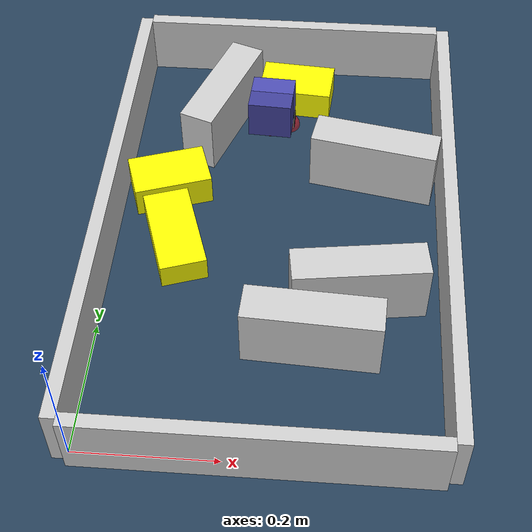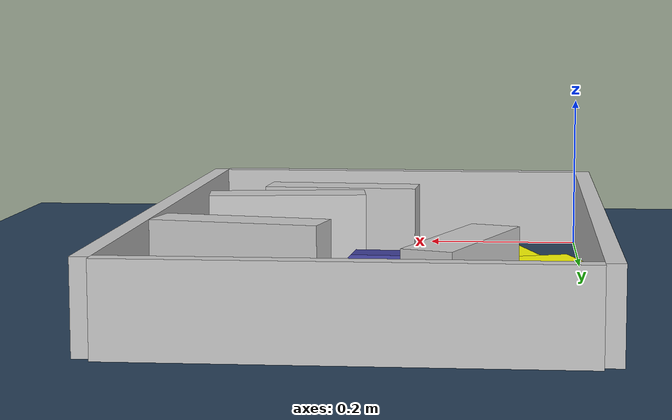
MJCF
<?xml version='1.0' encoding='utf-8'?>
<mujoco model="real_buildable">
  <compiler angle="degree" />
  <option timestep="0.002" integrator="implicitfast" iterations="100" cone="elliptic" />
  <default>
    <geom density="1" />
  </default>
  <asset>
    <texture builtin="gradient" height="3072" rgb1="0.3 0.5 0.7" rgb2="0 0 0" type="skybox" width="512" />
    <texture builtin="checker" height="300" mark="edge" markrgb="0.8 0.8 0.8" name="groundplane" rgb1="0.2 0.3 0.4" rgb2="0.1 0.2 0.3" type="2d" width="300" />
    <material name="groundplane" reflectance="0.2" texrepeat="5 5" texture="groundplane" texuniform="true" />
  </asset>
  <worldbody>
    <light dir="0 0 -1" directional="true" pos="0 0 1.5" />
    <geom name="floor" type="plane" condim="4" friction="0.5 0.005 0.001" material="groundplane" size="0 0 0.05" />
    <body name="walls">
      <geom name="wall_boundary_left" type="box" condim="4" friction="1.0 0.005 0.0001" rgba="0.8 0.8 0.8 1" pos="-0.010000 0.387500 0.050000" euler="0 0 0.000000" size="0.010000 0.397500 0.050000" />
      <geom name="wall_boundary_right" type="box" condim="4" friction="1.0 0.005 0.0001" rgba="0.8 0.8 0.8 1" pos="0.500000 0.387500 0.050000" euler="0 0 0.000000" size="0.010000 0.397500 0.050000" />
      <geom name="wall_boundary_bottom" type="box" condim="4" friction="1.0 0.005 0.0001" rgba="0.8 0.8 0.8 1" pos="0.245000 -0.010000 0.050000" euler="0 0 0.000000" size="0.245000 0.010000 0.050000" />
      <geom name="wall_boundary_top" type="box" condim="4" friction="1.0 0.005 0.0001" rgba="0.8 0.8 0.8 1" pos="0.245000 0.785000 0.050000" euler="0 0 0.000000" size="0.245000 0.010000 0.050000" />
      <geom name="wall_inner_1" type="box" condim="4" friction="1.0 0.005 0.0001" rgba="0.8 0.8 0.8 1" pos="0.307452 0.181307 0.050000" euler="0 0 -3.001577" size="0.097500 0.027500 0.050000" />
      <geom name="wall_inner_2" type="box" condim="4" friction="1.0 0.005 0.0001" rgba="0.8 0.8 0.8 1" pos="0.369012 0.266334 0.050000" euler="0 0 7.505534" size="0.097500 0.027500 0.050000" />
      <geom name="wall_inner_3" type="box" condim="4" friction="1.0 0.005 0.0001" rgba="0.8 0.8 0.8 1" pos="0.389000 0.514000 0.050000" euler="0 0 169.500000" size="0.097500 0.027500 0.050000" />
      <geom name="wall_inner_4" type="box" condim="4" friction="1.0 0.005 0.0001" rgba="0.8 0.8 0.8 1" pos="0.138000 0.629000 0.050000" euler="0 0 70.200000" size="0.097500 0.027500 0.050000" />
    </body>
    <body name="car" pos="0.21899298946609078 0.62903842118031572 0.01" quat="0.72657695712508841 0 0 0.68708509325617562">
      <freejoint name="car_freejoint" />
      <inertial pos="0 0 0.0375" mass="0.35" diaginertia="0.000266 0.000266 0.000286" />
      <geom name="front_chassis_collision" type="box" pos="0.0175 0 0.0375" size="0.0175 0.035 0.0325" rgba="0.3 0.3 0.7 1" />
      <geom name="rear_chassis_collision" type="box" pos="-0.0175 0 0.0375" size="0.0175 0.035 0.0325" rgba="0.25 0.25 0.6 1" />
      <geom name="front_marker" type="box" pos="0.034 0 0.0505" size="0.002 0.015 0.01" rgba="1 0.2 0.2 1" contype="0" conaffinity="0" />
      <body name="rear_support_body" pos="-0.03 0 0.0025">
        <joint name="rear_caster_joint" type="ball" damping="0.0001" />
        <inertial pos="0 0 0" mass="0.025" diaginertia="0.000001 0.000001 0.000001" />
        <geom name="rear_support" type="sphere" pos="0 0 0" size="0.0025" friction="0 0 0" rgba="0.7 0.1 0.1 1" />
      </body>
      <body name="front_support_body" pos="0.03 0 0.0025">
        <joint name="front_caster_joint" type="ball" damping="0.0001" />
        <inertial pos="0 0 0" mass="0.025" diaginertia="0.000001 0.000001 0.000001" />
        <geom name="front_support" type="sphere" pos="0 0 0" size="0.0025" friction="0 0 0" rgba="0.1 0.7 0.1 1" />
      </body>
      <body name="left_wheel" pos="0 0.0375 0.015">
        <inertial pos="0 0 0" mass="0.05" diaginertia="0.000003 0.000006 0.000003" />
        <joint name="left_wheel_joint" type="hinge" axis="0 1 0" damping="0.01" armature="0.0001" />
        <geom name="left_wheel_collision" type="cylinder" size="0.015 0.0005" euler="90 0 0" rgba="0.1 0.1 0.1 1" />
      </body>
      <body name="right_wheel" pos="0 -0.0375 0.015">
        <inertial pos="0 0 0" mass="0.05" diaginertia="0.000003 0.000006 0.000003" />
        <joint name="right_wheel_joint" type="hinge" axis="0 1 0" damping="0.01" armature="0.0001" />
        <geom name="right_wheel_collision" type="cylinder" size="0.015 0.0005" euler="90 0 0" rgba="0.1 0.1 0.1 1" />
      </body>
    </body>
    <body name="obstacle_0_movable">
      <geom name="obstacle_0_movable" condim="4" pos="0.090931235596544424 0.36052819405622422 0.02" friction="1 0.005 0.0001" rgba="1 1 0 1" size="0.035000 0.075000 0.020000" type="box" mass="0.1" quat="0.98716912807109281 0 0 0.15967815311857311" />
      <joint type="free" />
    </body>
    <body name="obstacle_1_movable">
      <geom name="obstacle_1_movable" condim="4" pos="0.25627746262546491 0.70047666336194792 0.025000000000000001" friction="1 0.005 0.0001" rgba="1 1 0 1" size="0.037500 0.060000 0.025000" type="box" mass="0.1" quat="0.6780165957779376 0 0 -0.73504659433922737" />
      <joint type="free" />
    </body>
    <body name="obstacle_2_movable">
      <geom name="obstacle_2_movable" condim="4" pos="0.068768382451419738 0.47173048764376924 0.025000000000000001" friction="1 0.005 0.0001" rgba="1 1 0 1" size="0.037500 0.060000 0.025000" type="box" mass="0.1" quat="0.58500652655679986 0 0 0.81102858388958665" />
      <joint type="free" />
    </body>
    <site name="goal" type="sphere" pos="0.245000 0.640000 0.0" size="0.02" rgba="1 0 0 0.5" />
  </worldbody>
  <actuator>
    <velocity name="left_wheel_drive" joint="left_wheel_joint" ctrlrange="-25 25" kv="0.75" forcerange="-0.5 0.5" />
    <velocity name="right_wheel_drive" joint="right_wheel_joint" ctrlrange="-25 25" kv="0.75" forcerange="-0.5 0.5" />
  </actuator>
</mujoco>
